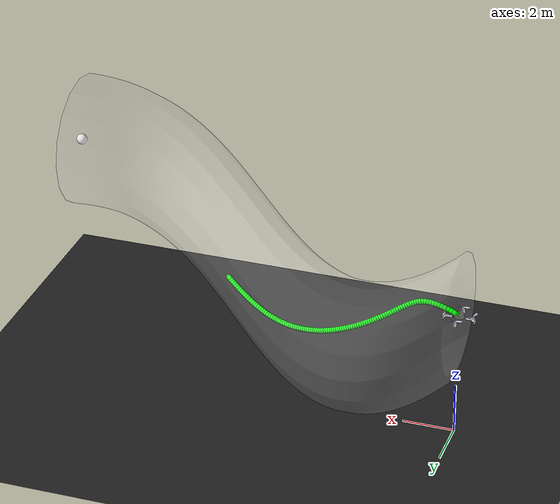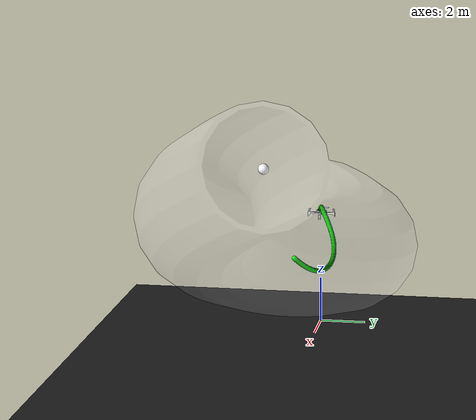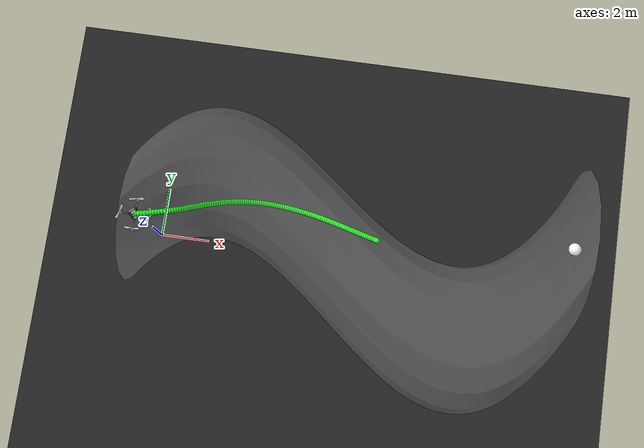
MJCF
<mujoco model="CF2 scene">
  <include file="cf2.xml" />

  <statistic center="0 0 0.1" extent="0.2" meansize=".05" />

  <visual>

    <rgba haze="0.15 0.25 0.35 0" />
    <global azimuth="-20" elevation="-20" ellipsoidinertia="true" />
    <map zfar="1000" />
  </visual>

  <asset>
    <mesh name="tunnel" file="tube_thick.obj" scale="1.0 1.0 1.0" />
    <texture type="skybox" builtin="gradient" rgb1="0.3 0.5 0.7" rgb2="0 0 0" width="512" height="3072" />

    <texture type="2d" name="groundplane" builtin="checker" mark="edge" rgb1="0.1 0.1 0.1" rgb2="0.2 0.2 0.2" markrgb="0.8 0.8 0.8" width="300" height="300" />

    <material name="groundplane" texture="groundplane" texuniform="true" texrepeat="5 5" reflectance="0.0" />
  </asset>

  <worldbody>
    <light diffuse="1 1 1" ambient="1 1 1" pos="0 0 100" dir="0 0 -1" directional="false" castshadow="false" />

    <geom name="floor" size="0 0 0.05" type="plane" material="groundplane" />
    <site name="x_axis" size="0.005" type="cylinder" fromto="0 0 0 1 0 0" rgba="1 0 0 1" />
    <site name="y_axis" size="0.005" type="cylinder" fromto="0 0 0 0 1 0" rgba="0 1 0 1" />
    <site name="z_axis" size="0.005" type="cylinder" fromto="0 0 0 0 0 1" rgba="0 0 1 1" />

    <site name="target" size="0.2" type="sphere" pos="15 0 10" rgba="1 1 1 1" />

    <camera name="cam_aux" pos="-3.429 -18.876 13.649" xyaxes="0.874 -0.486 -0.000 0.179 0.321 0.930" />
    <camera name="cam_traj_1" pos="-7.863 -0.826 23.122" xyaxes="0.020 -1.000 0.000 0.737 0.014 0.676" />
    <camera name="cam_traj_2" pos="7.041 -14.560 20.718" xyaxes="1.000 -0.031 -0.000 0.021 0.691 0.722" />
    <camera name="cam_traj_3" pos="-11.538 -0.602 8.690" xyaxes="0.046 -0.999 -0.000 0.161 0.007 0.987" />

    <body name="tunnel" pos="0.0 0.0 0.0" quat="1 0 0 0">
         <geom name="tunnel" type="mesh" mesh="tunnel" pos="-0.0 0.0 0.029" quat="1 0 0 0" rgba="1 1 1 0.05" />
    </body>

  <body name="trajectory_0" pos="0 0 0"><geom type="capsule" fromto="0.004079218832733524 0.000369304007222971 5.036228656554201 0.034410999647552135 0.003386690718077548 5.097169335923788" size="0.1" rgba="0 1 0.0 1" /><geom type="capsule" fromto="0.034410999647552135 0.003386690718077548 5.097169335923788 0.11802009602138715 0.010830227152276753 5.169094152804735" size="0.1" rgba="0 1 0.0 1" /><geom type="capsule" fromto="0.11802009602138715 0.010830227152276753 5.169094152804735 0.23740686414685702 0.021277380510837947 5.237064967284532" size="0.1" rgba="0 1 0.0 1" /><geom type="capsule" fromto="0.23740686414685702 0.021277380510837947 5.237064967284532 0.36538567007016265 0.03407265556915245 5.290961090655026" size="0.1" rgba="0 1 0.0 1" /><geom type="capsule" fromto="0.36538567007016265 0.03407265556915245 5.290961090655026 0.4888879292658142 0.04907234262312233 5.343594957711468" size="0.1" rgba="0 1 0.0 1" /><geom type="capsule" fromto="0.4888879292658142 0.04907234262312233 5.343594957711468 0.6043202319572154 0.06545808628177216 5.392396074441798" size="0.1" rgba="0 1 0.0 1" /><geom type="capsule" fromto="0.6043202319572154 0.06545808628177216 5.392396074441798 0.7152518907430054 0.08262764745122234 5.4360402317384" size="0.1" rgba="0 1 0.0 1" /><geom type="capsule" fromto="0.7152518907430054 0.08262764745122234 5.4360402317384 0.824009401678503 0.10033008482917541 5.474268553816616" size="0.1" rgba="0 1 0.0 1" /><geom type="capsule" fromto="0.824009401678503 0.10033008482917541 5.474268553816616 0.9301786713326132 0.11858869144756455 5.506453778919983" size="0.1" rgba="0 1 0.0 1" /><geom type="capsule" fromto="0.9301786713326132 0.11858869144756455 5.506453778919983 1.032780900642003 0.13757953442834572 5.531991085522639" size="0.1" rgba="0 1 0.0 1" /><geom type="capsule" fromto="1.032780900642003 0.13757953442834572 5.531991085522639 1.1314586760277234 0.1575254572644415 5.550484746549378" size="0.1" rgba="0 1 0.0 1" /><geom type="capsule" fromto="1.1314586760277234 0.1575254572644415 5.550484746549378 1.2262916174255953 0.17865017536371267 5.561618463748745" size="0.1" rgba="0 1 0.0 1" /><geom type="capsule" fromto="1.2262916174255953 0.17865017536371267 5.561618463748745 1.317477837784216 0.20116658817488633 5.565250034117393" size="0.1" rgba="0 1 0.0 1" /><geom type="capsule" fromto="1.317477837784216 0.20116658817488633 5.565250034117393 1.405251843358714 0.2252571959445097 5.56148961626999" size="0.1" rgba="0 1 0.0 1" /><geom type="capsule" fromto="1.405251843358714 0.2252571959445097 5.56148961626999 1.4899192076581091 0.2510420024809921 5.550716910339737" size="0.1" rgba="0 1 0.0 1" /><geom type="capsule" fromto="1.4899192076581091 0.2510420024809921 5.550716910339737 1.5718663831642927 0.27854912551628686 5.533533621944337" size="0.1" rgba="0 1 0.0 1" /><geom type="capsule" fromto="1.5718663831642927 0.27854912551628686 5.533533621944337 1.651529429939126 0.3077029145790112 5.510692260121318" size="0.1" rgba="0 1 0.0 1" /><geom type="capsule" fromto="1.651529429939126 0.3077029145790112 5.510692260121318 1.7293742059233241 0.33833862878429116 5.483112024311284" size="0.1" rgba="0 1 0.0 1" /><geom type="capsule" fromto="1.7293742059233241 0.33833862878429116 5.483112024311284 1.8058667235639545 0.37022949936442606 5.451831758381821" size="0.1" rgba="0 1 0.0 1" /><geom type="capsule" fromto="1.8058667235639545 0.37022949936442606 5.451831758381821 1.8813961839736828 0.4031077736851897 5.417744203113499" size="0.1" rgba="0 1 0.0 1" /><geom type="capsule" fromto="1.8813961839736828 0.4031077736851897 5.417744203113499 1.95626143862728 0.43669473448065754 5.381545602661202" size="0.1" rgba="0 1 0.0 1" /><geom type="capsule" fromto="1.95626143862728 0.43669473448065754 5.381545602661202 2.0306926308136166 0.4707258474135949 5.3437966201584155" size="0.1" rgba="0 1 0.0 1" /><geom type="capsule" fromto="2.0306926308136166 0.4707258474135949 5.3437966201584155 2.104866585814905 0.5049621353640296 5.304950600639018" size="0.1" rgba="0 1 0.0 1" /><geom type="capsule" fromto="2.104866585814905 0.5049621353640296 5.304950600639018 2.178918310895949 0.5391935907562525 5.265372971141344" size="0.1" rgba="0 1 0.0 1" /><geom type="capsule" fromto="2.178918310895949 0.5391935907562525 5.265372971141344 2.2529497167967456 0.57323863186612 5.225357198128634" size="0.1" rgba="0 1 0.0 1" /><geom type="capsule" fromto="2.2529497167967456 0.57323863186612 5.225357198128634 2.3270365264286834 0.6069418158271803 5.185138149532053" size="0.1" rgba="0 1 0.0 1" /><geom type="capsule" fromto="2.3270365264286834 0.6069418158271803 5.185138149532053 2.4012339125855693 0.6401709600772735 5.144903159048769" size="0.1" rgba="0 1 0.0 1" /><geom type="capsule" fromto="2.4012339125855693 0.6401709600772735 5.144903159048769 2.4755810957812105 0.672814228839852 5.104801126799339" size="0.1" rgba="0 1 0.0 1" /><geom type="capsule" fromto="2.4755810957812105 0.672814228839852 5.104801126799339 2.550105038891869 0.7047774182998339 5.064949976794993" size="0.1" rgba="0 1 0.0 1" /><geom type="capsule" fromto="2.550105038891869 0.7047774182998339 5.064949976794993 2.6248233798672858 0.735981516759516 5.025442756878525" size="0.1" rgba="0 1 0.0 1" /><geom type="capsule" fromto="2.6248233798672858 0.735981516759516 5.025442756878525 2.699746747718469 0.7663605496537952 4.98635262812376" size="0.1" rgba="0 1 0.0 1" /><geom type="capsule" fromto="2.699746747718469 0.7663605496537952 4.98635262812376 2.7748805895357167 0.7958596950430997 4.9477369497800545" size="0.1" rgba="0 1 0.0 1" /><geom type="capsule" fromto="2.7748805895357167 0.7958596950430997 4.9477369497800545 2.850226610361106 0.8244336471238778 4.9096406262978585" size="0.1" rgba="0 1 0.0 1" /><geom type="capsule" fromto="2.850226610361106 0.8244336471238778 4.9096406262978585 2.92578390480553 0.8520452026964611 4.872098849146541" size="0.1" rgba="0 1 0.0 1" /><geom type="capsule" fromto="2.92578390480553 0.8520452026964611 4.872098849146541 3.0015498422445686 0.8786640450541928 4.835139339624094" size="0.1" rgba="0 1 0.0 1" /><geom type="capsule" fromto="3.0015498422445686 0.8786640450541928 4.835139339624094 3.0775207549131522 0.9042657005131598 4.7987841787538645" size="0.1" rgba="0 1 0.0 1" /><geom type="capsule" fromto="3.0775207549131522 0.9042657005131598 4.7987841787538645 3.1536924685719585 0.9288306443827385 4.7630512949961705" size="0.1" rgba="0 1 0.0 1" /><geom type="capsule" fromto="3.1536924685719585 0.9288306443827385 4.7630512949961705 3.230060707826563 0.9523435352215069 4.727955668416212" size="0.1" rgba="0 1 0.0 1" /><geom type="capsule" fromto="3.230060707826563 0.9523435352215069 4.727955668416212 3.306621401849789 0.9747925584230869 4.693510300508022" size="0.1" rgba="0 1 0.0 1" /><geom type="capsule" fromto="3.306621401849789 0.9747925584230869 4.693510300508022 3.383370910779365 0.996168862331934 4.659726990990161" size="0.1" rgba="0 1 0.0 1" /><geom type="capsule" fromto="3.383370910779365 0.996168862331934 4.659726990990161 3.4603061894803995 1.0164660721261256 4.626616955793007" size="0.1" rgba="0 1 0.0 1" /><geom type="capsule" fromto="3.4603061894803995 1.0164660721261256 4.626616955793007 3.537424902820306 1.0356798685895345 4.5941913156258956" size="0.1" rgba="0 1 0.0 1" /><geom type="capsule" fromto="3.537424902820306 1.0356798685895345 4.5941913156258956 3.6147255035665533 1.0538076205681803 4.5624614801346075" size="0.1" rgba="0 1 0.0 1" /><geom type="capsule" fromto="3.6147255035665533 1.0538076205681803 4.5624614801346075 3.692207281512973 1.0708480613848121 4.531439448182631" size="0.1" rgba="0 1 0.0 1" /><geom type="capsule" fromto="3.692207281512973 1.0708480613848121 4.531439448182631 3.7698703908231006 1.0868010007954108 4.501138041661371" size="0.1" rgba="0 1 0.0 1" /><geom type="capsule" fromto="3.7698703908231006 1.0868010007954108 4.501138041661371 3.8477158612952262 1.1016670652095866 4.471571087534925" size="0.1" rgba="0 1 0.0 1" /><geom type="capsule" fromto="3.8477158612952262 1.1016670652095866 4.471571087534925 3.925745598156549 1.1154474598786106 4.442753560490771" size="0.1" rgba="0 1 0.0 1" /><geom type="capsule" fromto="3.925745598156549 1.1154474598786106 4.442753560490771 4.003962374068924 1.128143747591155 4.4147016965886365" size="0.1" rgba="0 1 0.0 1" /><geom type="capsule" fromto="4.003962374068924 1.128143747591155 4.4147016965886365 4.082369816276019 1.1397576391151194 4.387433086656591" size="0.1" rgba="0 1 0.0 1" /><geom type="capsule" fromto="4.082369816276019 1.1397576391151194 4.387433086656591 4.160972391222801 1.1502907911913096 4.360966756839699" size="0.1" rgba="0 1 0.0 1" /><geom type="capsule" fromto="4.160972391222801 1.1502907911913096 4.360966756839699 4.239775388506295 1.159744608327835 4.335323242623523" size="0.1" rgba="0 1 0.0 1" /><geom type="capsule" fromto="4.239775388506295 1.159744608327835 4.335323242623523 4.318784905647876 1.1681200449677094 4.310524661800657" size="0.1" rgba="0 1 0.0 1" /><geom type="capsule" fromto="4.318784905647876 1.1681200449677094 4.310524661800657 4.398007834894378 1.1754174048083321 4.286594791200045" size="0.1" rgba="0 1 0.0 1" /><geom type="capsule" fromto="4.398007834894378 1.1754174048083321 4.286594791200045 4.477451853045476 1.1816361341388881 4.263559151539784" size="0.1" rgba="0 1 0.0 1" /><geom type="capsule" fromto="4.477451853045476 1.1816361341388881 4.263559151539784 4.557125415158422 1.1867746060248618 4.241445104483677" size="0.1" rgba="0 1 0.0 1" /><geom type="capsule" fromto="4.557125415158422 1.1867746060248618 4.241445104483677 4.637037752890429 1.1908298919975848 4.220281965871705" size="0.1" rgba="0 1 0.0 1" /><geom type="capsule" fromto="4.637037752890429 1.1908298919975848 4.220281965871705 4.71719813679634 1.1937975368370084 4.200098341662973" size="0.1" rgba="0 1 0.0 1" /><geom type="capsule" fromto="4.71719813679634 1.1937975368370084 4.200098341662973 4.797614741377785 1.1956713256667937 4.180917968621146" size="0.1" rgba="0 1 0.0 1" /><geom type="capsule" fromto="4.797614741377785 1.1956713256667937 4.180917968621146 4.878295814722575 1.1964438796135384 4.162764386164204" size="0.1" rgba="0 1 0.0 1" /><geom type="capsule" fromto="4.878295814722575 1.1964438796135384 4.162764386164204 4.9592503835790565 1.1961145523569385 4.145664462178894" size="0.1" rgba="0 1 0.0 1" /><geom type="capsule" fromto="4.9592503835790565 1.1961145523569385 4.145664462178894 5.040487909187953 1.1946956281593328 4.129647922020847" size="0.1" rgba="0 1 0.0 1" /><geom type="capsule" fromto="5.040487909187953 1.1946956281593328 4.129647922020847 5.122018087447468 1.1922095342014976 4.114747058781677" size="0.1" rgba="0 1 0.0 1" /><geom type="capsule" fromto="5.122018087447468 1.1922095342014976 4.114747058781677 5.203850580217675 1.1886835336315391 4.100996151010571" size="0.1" rgba="0 1 0.0 1" /><geom type="capsule" fromto="5.203850580217675 1.1886835336315391 4.100996151010571 5.285994790335234 1.184144907887848 4.088430887247395" size="0.1" rgba="0 1 0.0 1" /><geom type="capsule" fromto="5.285994790335234 1.184144907887848 4.088430887247395 5.368459805244199 1.1786178540890753 4.077088402985317" size="0.1" rgba="0 1 0.0 1" /><geom type="capsule" fromto="5.368459805244199 1.1786178540890753 4.077088402985317 5.451254357528738 1.1721219990475393 4.067007500217504" size="0.1" rgba="0 1 0.0 1" /><geom type="capsule" fromto="5.451254357528738 1.1721219990475393 4.067007500217504 5.534386733162483 1.1646720115378866 4.058228804701545" size="0.1" rgba="0 1 0.0 1" /><geom type="capsule" fromto="5.534386733162483 1.1646720115378866 4.058228804701545 5.617864630197958 1.156277836118252 4.050794837801903" size="0.1" rgba="0 1 0.0 1" /><geom type="capsule" fromto="5.617864630197958 1.156277836118252 4.050794837801903 5.701694979614621 1.1469452246540526 4.04475002381794" size="0.1" rgba="0 1 0.0 1" /><geom type="capsule" fromto="5.701694979614621 1.1469452246540526 4.04475002381794 5.7858837339877205 1.1366763777931765 4.040140647744672" size="0.1" rgba="0 1 0.0 1" /><geom type="capsule" fromto="5.7858837339877205 1.1366763777931765 4.040140647744672 5.8704356252066265 1.125470602604728 4.037014768054228" size="0.1" rgba="0 1 0.0 1" /><geom type="capsule" fromto="5.8704356252066265 1.125470602604728 4.037014768054228 5.955353890816717 1.1133249498943973 4.035422081738411" size="0.1" rgba="0 1 0.0 1" /><geom type="capsule" fromto="5.955353890816717 1.1133249498943973 4.035422081738411 6.040639968146904 1.1002348262268609 4.0354137336005955" size="0.1" rgba="0 1 0.0 1" /><geom type="capsule" fromto="6.040639968146904 1.1002348262268609 4.0354137336005955 6.126293155620137 1.0861945908580195 4.037042057965407" size="0.1" rgba="0 1 0.0 1" /><geom type="capsule" fromto="6.126293155620137 1.0861945908580195 4.037042057965407 6.212310241599069 1.071198153376495 4.0403602385033155" size="0.1" rgba="0 1 0.0 1" /><geom type="capsule" fromto="6.212310241599069 1.071198153376495 4.0403602385033155 6.298685102937122 1.0552395882073795 4.045421870703627" size="0.1" rgba="0 1 0.0 1" /><geom type="capsule" fromto="6.298685102937122 1.0552395882073795 4.045421870703627 6.385408278136811 1.038313779709506 4.052280411645695" size="0.1" rgba="0 1 0.0 1" /><geom type="capsule" fromto="6.385408278136811 1.038313779709506 4.052280411645695 6.47246652365728 1.0204171075916153 4.060988503241976" size="0.1" rgba="0 1 0.0 1" /><geom type="capsule" fromto="6.47246652365728 1.0204171075916153 4.060988503241976 6.5598423664203995 1.001548177194131 4.0715971583855985" size="0.1" rgba="0 1 0.0 1" /><geom type="capsule" fromto="6.5598423664203995 1.001548177194131 4.0715971583855985 6.647513670816385 0.9817085928437592 4.084154804886403" size="0.1" rgba="0 1 0.0 1" /><geom type="capsule" fromto="6.647513670816385 0.9817085928437592 4.084154804886403 6.735453244220431 0.9609037648829242 4.098706190173773" size="0.1" rgba="0 1 0.0 1" /><geom type="capsule" fromto="6.735453244220431 0.9609037648829242 4.098706190173773 6.823628510674528 0.939143732100769 4.115291160754518" size="0.1" rgba="0 1 0.0 1" /><geom type="capsule" fromto="6.823628510674528 0.939143732100769 4.115291160754518 6.912001287142511 0.9164439714220647 4.13394334423111" size="0.1" rgba="0 1 0.0 1" /><geom type="capsule" fromto="6.912001287142511 0.9164439714220647 4.13394334423111 7.000527699501544 0.8928261565435677 4.1546887776042" size="0.1" rgba="0 1 0.0 1" /><geom type="capsule" fromto="7.000527699501544 0.8928261565435677 4.1546887776042 7.089158274888497 0.8683188179536733 4.177544542123777" size="0.1" rgba="0 1 0.0 1" /><geom type="capsule" fromto="7.089158274888497 0.8683188179536733 4.177544542123777 7.17783824190652 0.842957850131801 4.202517479809559" size="0.1" rgba="0 1 0.0 1" /><geom type="capsule" fromto="7.17783824190652 0.842957850131801 4.202517479809559 7.2665080596311995 0.8167868097068808 4.2296030769808795" size="0.1" rgba="0 1 0.0 1" /><geom type="capsule" fromto="7.2665080596311995 0.8167868097068808 4.2296030769808795 7.3551041802638375 0.7898569528865639 4.258784602605687" size="0.1" rgba="0 1 0.0 1" /><geom type="capsule" fromto="7.3551041802638375 0.7898569528865639 4.258784602605687 7.443560029774646 0.7622269728309337 4.29003258149617" size="0.1" rgba="0 1 0.0 1" /><geom type="capsule" fromto="7.443560029774646 0.7622269728309337 4.29003258149617 7.5318071684036605 0.7339624178534515 4.323304663352936" size="0.1" rgba="0 1 0.0 1" /><geom type="capsule" fromto="7.5318071684036605 0.7339624178534515 4.323304663352936 7.619776571958279 0.7051347976928486 4.358545919617616" size="0.1" rgba="0 1 0.0 1" /><geom type="capsule" fromto="7.619776571958279 0.7051347976928486 4.358545919617616 7.707399959346897 0.6758204141776427 4.395689564652439" size="0.1" rgba="0 1 0.0 1" /><geom type="capsule" fromto="7.707399959346897 0.6758204141776427 4.395689564652439 7.794611084954808 0.6460989797590022 4.434658061333" size="0.1" rgba="0 1 0.0 1" /><geom type="capsule" fromto="7.794611084954808 0.6460989797590022 4.434658061333 7.881346917855419 0.6160521067525426 4.475364539424763" size="0.1" rgba="0 1 0.0 1" /><geom type="capsule" fromto="7.881346917855419 0.6160521067525426 4.475364539424763 7.967548643268266 0.5857617602056537 4.517714435053724" size="0.1" rgba="0 1 0.0 1" /><geom type="capsule" fromto="7.967548643268266 0.5857617602056537 4.517714435053724 8.053162441803345 0.5553087721516343 4.5616072499283495" size="0.1" rgba="0 1 0.0 1" /><geom type="capsule" fromto="8.053162441803345 0.5553087721516343 4.5616072499283495 8.138140024515733 0.5247714998061813 4.606938325366064" size="0.1" rgba="0 1 0.0 1" /><geom type="capsule" fromto="8.138140024515733 0.5247714998061813 4.606938325366064 8.222438926007165 0.49422468252071644 4.6536005475392255" size="0.1" rgba="0 1 0.0 1" /><geom type="capsule" fromto="8.222438926007165 0.49422468252071644 4.6536005475392255 8.306022576299439 0.46373853080001814 4.701485922235045" size="0.1" rgba="0 1 0.0 1" /><geom type="capsule" fromto="8.306022576299439 0.46373853080001814 4.701485922235045 8.388860183777348 0.4333780605277986 4.7504869717935065" size="0.1" rgba="0 1 0.0 1" /><geom type="capsule" fromto="8.388860183777348 0.4333780605277986 4.7504869717935065 8.470926468729019 0.40320266608431843 4.800497928244192" size="0.1" rgba="0 1 0.0 1" /><geom type="capsule" fromto="8.470926468729019 0.40320266608431843 4.800497928244192 8.552201288510135 0.3732659107368471 4.851415714883856" size="0.1" rgba="0 1 0.0 1" /><geom type="capsule" fromto="8.552201288510135 0.3732659107368471 4.851415714883856 8.63266919262071 0.3436155030193341 4.903140721919245" size="0.1" rgba="0 1 0.0 1" /><geom type="capsule" fromto="8.63266919262071 0.3436155030193341 4.903140721919245 8.712318940811755 0.3142934234646755 4.955577390966985" size="0.1" rgba="0 1 0.0 1" /><geom type="capsule" fromto="8.712318940811755 0.3142934234646755 4.955577390966985 8.79114301106195 0.28533616584985705 5.008634628753808" size="0.1" rgba="0 1 0.0 1" /><geom type="capsule" fromto="8.79114301106195 0.28533616584985705 5.008634628753808 8.869137117833407 0.256775059721877 5.062226073020836" size="0.1" rgba="0 1 0.0 1" /><geom type="capsule" fromto="8.869137117833407 0.256775059721877 5.062226073020836 8.94629975506734 0.22863664520608357 5.116270234150678" size="0.1" rgba="0 1 0.0 1" /><geom type="capsule" fromto="8.94629975506734 0.22863664520608357 5.116270234150678 9.022631773275641 0.20094307603899653 5.1706905350821035" size="0.1" rgba="0 1 0.0 1" /></body></worldbody>

  <contact>
    <exclude name="cf2_tunnel" body1="cf2" body2="tunnel" />
  </contact>

</mujoco>

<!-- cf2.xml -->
<mujoco model="cf2">
  <option integrator="RK4" density="1.225" viscosity="1.8e-5" timestep="0.1"/>

  <compiler inertiafromgeom="false" meshdir="assets" autolimits="true"/>

  <default>
    <default class="cf2">
      <default class="visual">
        <geom group="2" type="mesh" contype="0" conaffinity="0"/>
      </default>
      <default class="collision">
        <geom group="3" type="mesh"/>
      </default>
      <site group="5"/>
    </default>
  </default>

  <asset>
    <material name="polished_plastic" rgba="0.631 0.659 0.678 1"/>
    <material name="polished_gold" rgba="0.969 0.878 0.6 1"/>
    <material name="medium_gloss_plastic" rgba="0.109 0.184 0.0 1"/>
    <material name="propeller_plastic" rgba="0.792 0.820 0.933 1"/>
    <material name="white" rgba="1 1 1 1"/>
    <material name="body_frame_plastic" rgba="0.102 0.102 0.102 1"/>
    <material name="burnished_chrome" rgba="0.898 0.898 0.898 1"/>

    <mesh file="cf2_0.obj"/>
    <mesh file="cf2_1.obj"/>
    <mesh file="cf2_2.obj"/>
    <mesh file="cf2_3.obj"/>
    <mesh file="cf2_4.obj"/>
    <mesh file="cf2_5.obj"/>
    <mesh file="cf2_6.obj"/>
    <mesh file="cf2_collision_0.obj"/>
    <mesh file="cf2_collision_1.obj"/>
    <mesh file="cf2_collision_2.obj"/>
    <mesh file="cf2_collision_3.obj"/>
    <mesh file="cf2_collision_4.obj"/>
    <mesh file="cf2_collision_5.obj"/>
    <mesh file="cf2_collision_6.obj"/>
    <mesh file="cf2_collision_7.obj"/>
    <mesh file="cf2_collision_8.obj"/>
    <mesh file="cf2_collision_9.obj"/>
    <mesh file="cf2_collision_10.obj"/>
    <mesh file="cf2_collision_11.obj"/>
    <mesh file="cf2_collision_12.obj"/>
    <mesh file="cf2_collision_13.obj"/>
    <mesh file="cf2_collision_14.obj"/>
    <mesh file="cf2_collision_15.obj"/>
    <mesh file="cf2_collision_16.obj"/>
    <mesh file="cf2_collision_17.obj"/>
    <mesh file="cf2_collision_18.obj"/>
    <mesh file="cf2_collision_19.obj"/>
    <mesh file="cf2_collision_20.obj"/>
    <mesh file="cf2_collision_21.obj"/>
    <mesh file="cf2_collision_22.obj"/>
    <mesh file="cf2_collision_23.obj"/>
    <mesh file="cf2_collision_24.obj"/>
    <mesh file="cf2_collision_25.obj"/>
    <mesh file="cf2_collision_26.obj"/>
    <mesh file="cf2_collision_27.obj"/>
    <mesh file="cf2_collision_28.obj"/>
    <mesh file="cf2_collision_29.obj"/>
    <mesh file="cf2_collision_30.obj"/>
    <mesh file="cf2_collision_31.obj"/>
  </asset>

  <worldbody>
    <body name="cf2" pos="0 0.0 5.0" childclass="cf2">
      <freejoint/>
      <inertial pos="0 0 0" mass="0.1" diaginertia="1e-2 1e-2 1e-2"/>
      <camera name="track_cf2" pos="-10  0 1" fovy="60" xyaxes="0 -1 0 0 0 1" mode="trackcom"/>
      <geom mesh="cf2_0" material="propeller_plastic" class="visual"/>
      <geom mesh="cf2_1" material="medium_gloss_plastic" class="visual"/>
      <geom mesh="cf2_2" material="polished_gold" class="visual"/>
      <geom mesh="cf2_3" material="polished_plastic" class="visual"/>
      <geom mesh="cf2_4" material="burnished_chrome" class="visual"/>
      <geom mesh="cf2_5" material="body_frame_plastic" class="visual"/>
      <geom mesh="cf2_6" material="white" class="visual"/>
      <geom mesh="cf2_collision_0" class="collision"/>
      <geom mesh="cf2_collision_1" class="collision"/>
      <geom mesh="cf2_collision_2" class="collision"/>
      <geom mesh="cf2_collision_3" class="collision"/>
      <geom mesh="cf2_collision_4" class="collision"/>
      <geom mesh="cf2_collision_5" class="collision"/>
      <geom mesh="cf2_collision_6" class="collision"/>
      <geom mesh="cf2_collision_7" class="collision"/>
      <geom mesh="cf2_collision_8" class="collision"/>
      <geom mesh="cf2_collision_9" class="collision"/>
      <geom mesh="cf2_collision_10" class="collision"/>
      <geom mesh="cf2_collision_11" class="collision"/>
      <geom mesh="cf2_collision_12" class="collision"/>
      <geom mesh="cf2_collision_13" class="collision"/>
      <geom mesh="cf2_collision_14" class="collision"/>
      <geom mesh="cf2_collision_15" class="collision"/>
      <geom mesh="cf2_collision_16" class="collision"/>
      <geom mesh="cf2_collision_17" class="collision"/>
      <geom mesh="cf2_collision_18" class="collision"/>
      <geom mesh="cf2_collision_19" class="collision"/>
      <geom mesh="cf2_collision_20" class="collision"/>
      <geom mesh="cf2_collision_21" class="collision"/>
      <geom mesh="cf2_collision_22" class="collision"/>
      <geom mesh="cf2_collision_23" class="collision"/>
      <geom mesh="cf2_collision_24" class="collision"/>
      <geom mesh="cf2_collision_25" class="collision"/>
      <geom mesh="cf2_collision_26" class="collision"/>
      <geom mesh="cf2_collision_27" class="collision"/>
      <geom mesh="cf2_collision_28" class="collision"/>
      <geom mesh="cf2_collision_29" class="collision"/>
      <geom mesh="cf2_collision_30" class="collision"/>
      <geom mesh="cf2_collision_31" class="collision"/>
      <site name="imu"/>
      <site name="actuation"/>
    </body>
  </worldbody>

  <actuator>
    <motor class="cf2" gear="0 0 1 0 0 0" site="actuation" name="body_thrust"/>
    <motor class="cf2" gear="0 0 0 1 0 0" site="actuation" name="x_moment"/>
    <motor class="cf2" gear="0 0 0 0 1 0" site="actuation" name="y_moment"/>
    <motor class="cf2" gear="0 0 0 0 0 1" site="actuation" name="z_moment"/>
  </actuator>

  <sensor>
    <gyro name="body_gyro" site="imu"/>
    <accelerometer name="body_linacc" site="imu"/>
    <framequat name="body_quat" objtype="site" objname="imu"/>
  </sensor>

  <keyframe>
    <key name="hover" qpos="0 0 0.1 1 0 0 0" ctrl="0.26487 0 0 0"/>
  </keyframe>
</mujoco>
